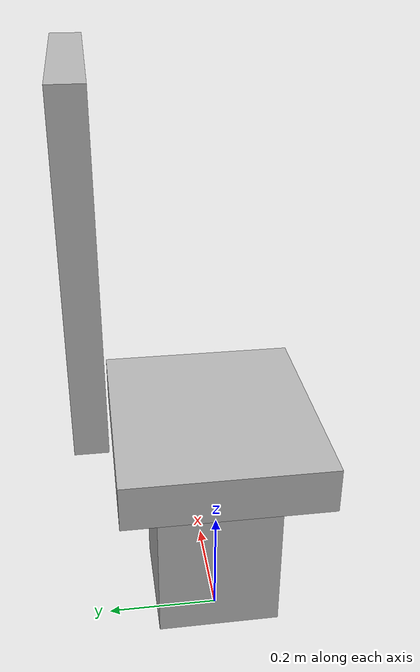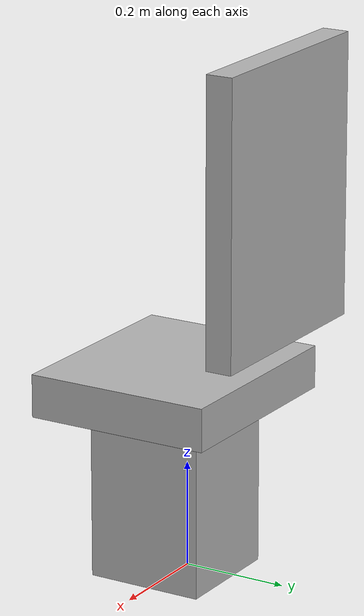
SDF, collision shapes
<?xml version="1.0"?>
<sdf version="1.9">
  <model name="dining_chair_v2">
    <static>true</static>
    <link name="body">
      <collision name="seat_collision">
        <pose>0.045 0.002 0.37 0 0 0</pose>
        <geometry><box><size>0.40 0.35 0.08</size></box></geometry>
      </collision>
      <collision name="back_collision">
        <pose>0.045 0.21 0.74 0 0 0</pose>
        <geometry><box><size>0.40 0.05 0.52</size></box></geometry>
      </collision>
      <collision name="support_collision">
        <pose>0.045 0.002 0.19 0 0 0</pose>
        <geometry><box><size>0.22 0.22 0.36</size></box></geometry>
      </collision>

      <visual name="chair_visual">
        <pose>0.045 0.002 -0.001 0 0 1.5708</pose>
        <geometry>
          <mesh>
            <uri>model://VisitorChair/meshes/VisitorChair.obj</uri>
            <scale>0.78 0.70 0.84</scale>
          </mesh>
        </geometry>
      </visual>
    </link>
  </model>
</sdf>
